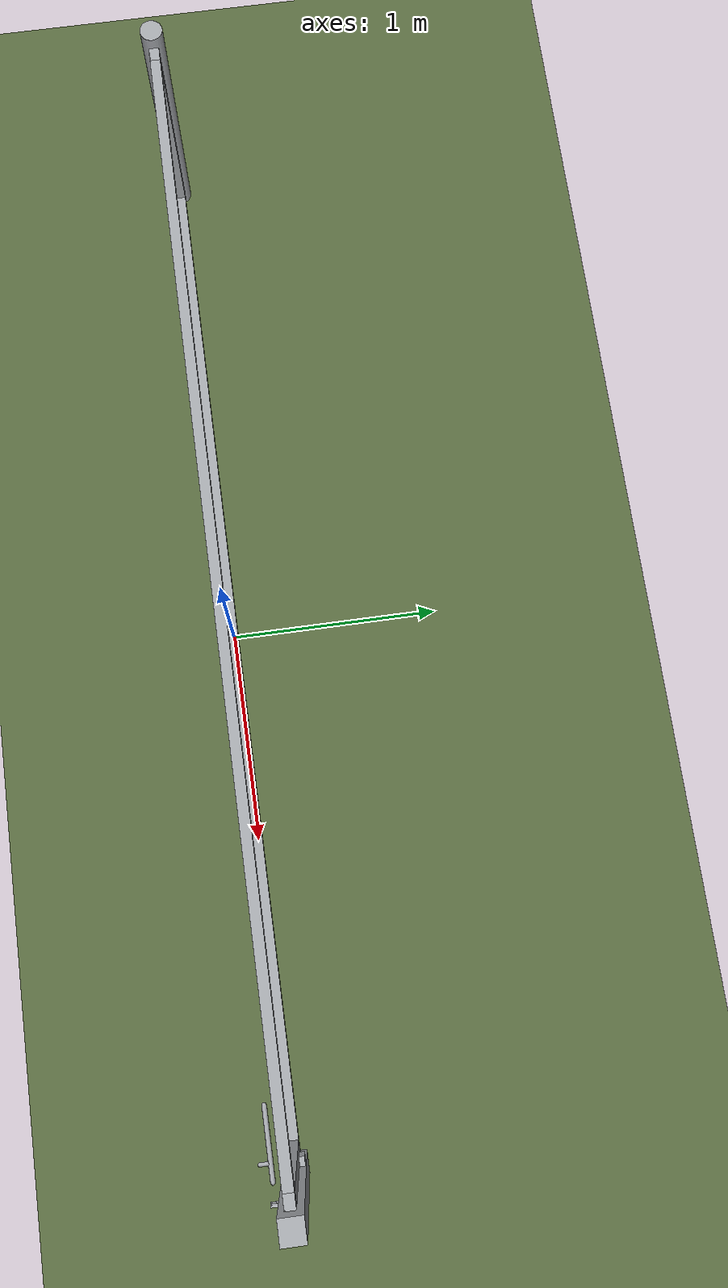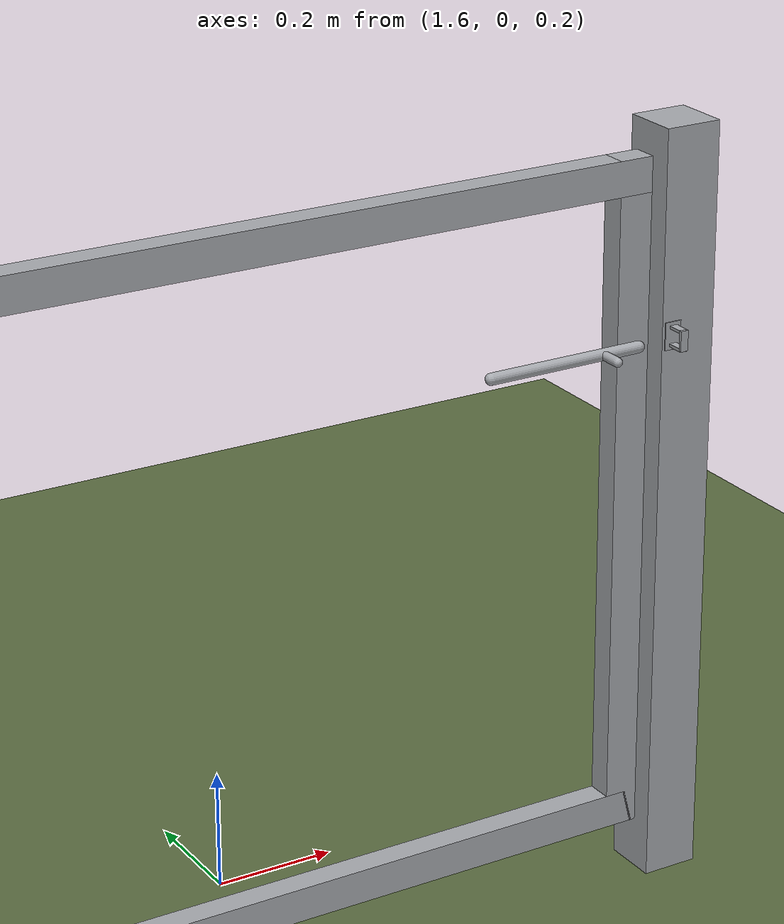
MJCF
<?xml version="1.0" ?>
<mujoco model="db0006_gate_swing_minimal">
  <compiler angle="radian" meshdir="../../hardware" texturedir="../../textures" autolimits="true" inertiafromgeom="false"/>
  <option timestep="0.002" integrator="implicitfast" cone="elliptic" impratio="10" noslip_iterations="3">
    <flag multiccd="enable"/>
  </option>
  <size memory="16M"/>
  <default>
    <geom condim="4" solref="0.005 1" solimp="0.95 0.99 0.001"/>
    <joint solreflimit="0.005 1" solimplimit="0.95 0.99 0.001"/>
    <tendon solreflimit="0.005 1"/>
    <equality solref="0.002 1"/>
  </default>
  <visual>
    <headlight ambient="0.4 0.4 0.4" diffuse="0.7 0.7 0.7" specular="0.2 0.2 0.2"/>
    <quality shadowsize="4096"/>
    <map znear="0.01" zfar="60"/>
  </visual>
  <asset>
    <material name="mat_floor" rgba="0.35 0.42 0.25 1" specular="0.2" shininess="0.15" reflectance="0"/>
    <material name="mat_wall" rgba="0.78 0.76 0.7 1" specular="0.2" shininess="0.1" reflectance="0"/>
    <material name="mat_leaf" rgba="0.65 0.66 0.68 1" specular="0.74" shininess="0.5" reflectance="0.36"/>
    <material name="mat_hinge" rgba="0.65 0.66 0.68 1" specular="0.74" shininess="0.5" reflectance="0.36"/>
    <material name="mat_op_steel_galvanized" rgba="0.65 0.66 0.68 1" specular="0.74" shininess="0.5" reflectance="0.36"/>
    <material name="mat_frame" rgba="0.65 0.66 0.68 1" specular="0.74" shininess="0.5" reflectance="0.36"/>
    <material name="mat_fence" rgba="0.7 0.45 0.32 1" specular="0.2" shininess="0.4" reflectance="0"/>
    <texture name="skybox" type="skybox" builtin="gradient" rgb1="0.6 0.7 0.85" rgb2="0.9 0.92 0.95" width="256" height="256"/>
  </asset>
  <worldbody>
    <light name="sun" pos="1.5 -2.5 4" dir="-0.3 0.5 -0.8" directional="true" diffuse="0.8 0.8 0.8" specular="0.3 0.3 0.3" castshadow="true"/>
    <light name="fill" pos="-1.5 2.5 3" dir="0.3 -0.5 -0.7" directional="true" diffuse="0.35 0.35 0.4" castshadow="false"/>
    <camera name="robot_view" pos="0 -5.13625 2.04815" xyaxes="1 0 0 0 0.26963 0.962964" fovy="52"/>
    <camera name="far_view" pos="0 5.13625 2.04815" xyaxes="-1 0 0 0 -0.26963 0.962964" fovy="52"/>
    <camera name="iso" pos="3.90355 -4.31445 2.86995" xyaxes="0.741536 0.670913 0 -0.242917 0.268487 0.932151" fovy="46"/>
    <camera name="detail_handle" pos="2.539 -0.92 1.28" xyaxes="0.97561 0.219512 0 -0.070934 0.315262 0.94635" fovy="38"/>
    <geom name="floor" type="box" size="6 6 0.05" pos="0 0 -0.05" material="mat_floor" group="0" contype="1" conaffinity="1" friction="0.8 0.005 0.0001" density="2400"/>
    <geom name="leaf_slide_bolt_keeper_leg_n" type="box" size="0.007 0.0025 0.017" pos="2.426 -0.067 0.9845" quat="0.707107 0.707107 0 0" material="mat_op_steel_galvanized" group="0" contype="1" conaffinity="1" friction="0.6 0.005 0.0001" density="7800"/>
    <geom name="leaf_slide_bolt_keeper_leg_p" type="box" size="0.007 0.0025 0.017" pos="2.426 -0.067 1.0155" quat="0.707107 0.707107 0 0" material="mat_op_steel_galvanized" group="0" contype="1" conaffinity="1" friction="0.6 0.005 0.0001" density="7800"/>
    <geom name="leaf_slide_bolt_keeper_bridge" type="box" size="0.007 0.018 0.0025" pos="2.426 -0.0815 1" quat="0.707107 0.707107 0 0" material="mat_op_steel_galvanized" group="0" contype="1" conaffinity="1" friction="0.6 0.005 0.0001" density="7800"/>
    <geom name="leaf_slide_bolt_keeper_base" type="box" size="0.015 0.024 0.001" pos="2.426 -0.051 1" quat="0.707107 0.707107 0 0" material="mat_op_steel_galvanized" group="1" contype="0" conaffinity="0" density="7800"/>
    <geom name="post_hinge" type="cylinder" size="0.05 0.675" pos="-2.456 0 0.675" material="mat_frame" group="0" contype="1" conaffinity="1" friction="0.6 0.005 0.0001" density="800"/>
    <geom name="post_latch" type="box" size="0.05 0.05 0.675" pos="2.456 0 0.675" material="mat_frame" group="0" contype="1" conaffinity="1" friction="0.6 0.005 0.0001" density="800"/>
    <geom name="gate_stop" type="box" size="0.02 0.012 0.06" pos="2.386 0.0345 0.35" material="mat_frame" group="0" contype="1" conaffinity="1" friction="0.6 0.005 0.0001" density="800"/>
    <site name="approach_point" pos="0 -1.5 0" quat="1 0 0 0" size="0.05" rgba="0.2 0.9 0.2 0.5" group="4"/>
    <site name="goal_point" pos="0 1.5 0" quat="1 0 0 0" size="0.05" rgba="0.2 0.9 0.2 0.5" group="4"/>
    <site name="door_plane_center" pos="0 0 0.61" quat="1 0 0 0" size="0.02" rgba="0.2 0.9 0.2 0.5" group="4"/>
    <body name="leaf" pos="-2.406 0 0">
      <inertial pos="2.403 0 0.7" mass="78.356275" quat="0 0 -0.707107 0.707107" diaginertia="9.421497532 150.482143525 159.877195814"/>
      <joint name="leaf_hinge" type="hinge" axis="0 0 -1" pos="0.003 -0.05 0" limited="true" range="0 1.745329" damping="115.093992" frictionloss="11.656764" armature="0.02"/>
      <geom name="leaf_slab_col" type="box" size="2.4 0.0225 0.6" pos="2.403 0 0.7" material="mat_leaf" group="3" contype="1" conaffinity="1" rgba="0.8 0.3 0.3 0.25" friction="0.42 0.005 0.0001" density="1"/>
      <geom name="leaf_rail_b" type="box" size="2.4 0.0225 0.03" pos="2.403 0 0.13" material="mat_leaf" group="1" contype="0" conaffinity="0" density="1"/>
      <geom name="leaf_rail_t" type="box" size="2.4 0.0225 0.03" pos="2.403 0 1.27" material="mat_leaf" group="1" contype="0" conaffinity="0" density="1"/>
      <geom name="leaf_stile_h" type="box" size="0.03 0.0225 0.6" pos="0.033 0 0.7" material="mat_leaf" group="1" contype="0" conaffinity="0" density="1"/>
      <geom name="leaf_stile_l" type="box" size="0.03 0.0225 0.6" pos="4.773 0 0.7" material="mat_leaf" group="1" contype="0" conaffinity="0" density="1"/>
      <site name="leaf_edge_mid" pos="4.803 0 0.6" quat="1 0 0 0" size="0.02" rgba="0.2 0.9 0.2 0.5" group="4"/>
      <body name="leaf_slide_bolt" pos="4.803 -0.066 1">
        <inertial pos="-0.182695 -0.00222 0" mass="0.793903" quat="0.010462 0 0 0.999945" diaginertia="0.000086646 0.005537364 0.005586021"/>
        <joint name="leaf_slide_bolt_slide" type="slide" axis="-1 0 0" limited="true" range="0 0.08" damping="1" frictionloss="3" armature="0.1" ref="0.08"/>
        <geom name="leaf_slide_bolt_rod" type="capsule" size="0.01 0.14" pos="-0.189 0 0" quat="0.707107 0 0.707107 0" material="mat_op_steel_galvanized" group="0" contype="1" conaffinity="1" friction="0.6 0.005 0.0001" density="7850"/>
        <geom name="leaf_slide_bolt_knob" type="capsule" size="0.008 0.017" pos="-0.118 -0.025 0" quat="0.707107 0.707107 0 0" material="mat_op_steel_galvanized" group="0" contype="1" conaffinity="1" friction="0.6 0.005 0.0001" density="7850"/>
        <site name="leaf_grip_n" pos="-0.118 -0.054 0" quat="1 0 0 0" size="0.012" rgba="0.2 0.9 0.2 0.5" group="4"/>
      </body>
    </body>
  </worldbody>
  <sensor>
    <jointpos name="leaf_hinge_pos" joint="leaf_hinge"/>
    <jointvel name="leaf_hinge_vel" joint="leaf_hinge"/>
    <jointpos name="leaf_slide_bolt_slide_pos" joint="leaf_slide_bolt_slide"/>
    <jointvel name="leaf_slide_bolt_slide_vel" joint="leaf_slide_bolt_slide"/>
  </sensor>
</mujoco>
